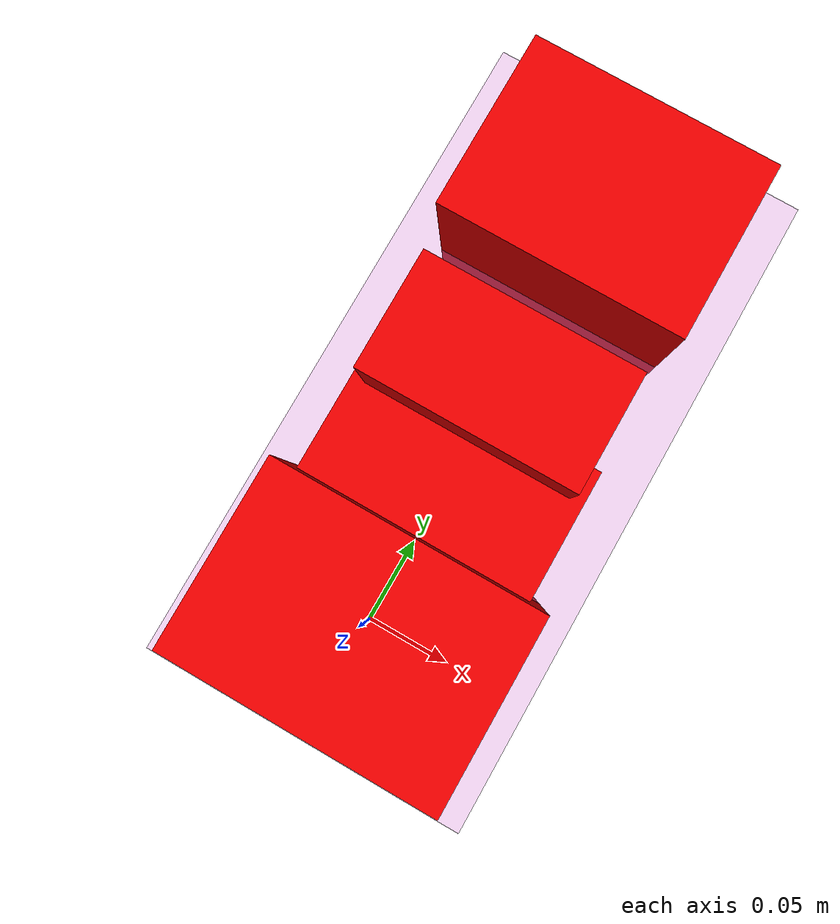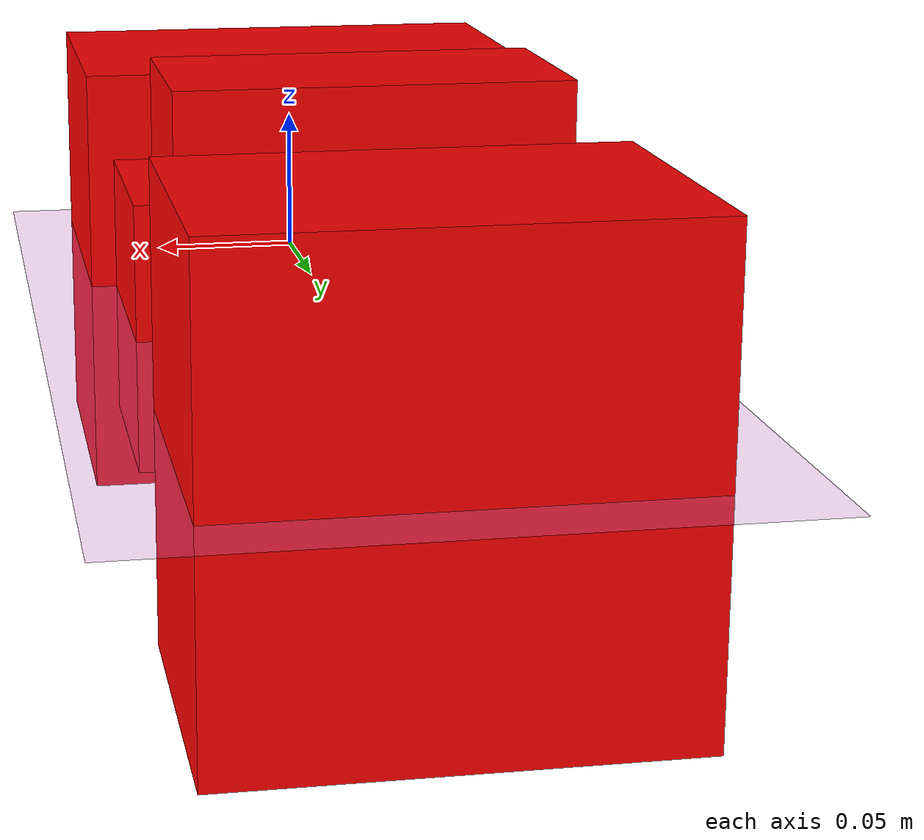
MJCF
<mujoco>
    <option gravity="0 0 -9.81"/>
    <worldbody>
        <light diffuse=".5 .5 .5" pos="0 0 3" dir="0 0 -1"/>
        <geom type="plane" size="5 5 0.1" rgba=".9 .5 .9 1"/>
        <body name="block0" pos="0 0 0">
            <joint type="free"/>
            <geom type="box" size="0.07528906749143635 0.05479215936285684 0.0798521647036522" rgba="1 0 0 1" euler="0 90 0"/>

            <body name="block1" pos="0 0.09368357249356182 0">
                <joint name="joint0" pos="0 -0.038891413130704974 0" type="hinge" axis="0 1 0" range="-15 0"/>
                <geom type="box" size="0.045323813014273094 0.038891413130704974 0.07099407188018585" rgba="1 0 0 1" euler="0 90 0"/>

                </body>

            <body name="block2" pos="0 0.14621832728977727 0">
                <joint name="joint1" pos="0 -0.03421775051418366 0" type="hinge" axis="0 1 0" range="-15 0"/>
                <geom type="box" size="0.0902197479771291 0.03421775051418366 0.06277217585596118" rgba="1 0 0 1" euler="0 90 0"/>

                </body>

            <body name="block3" pos="0 0.2610946632060267 0">
                <joint name="joint2" pos="0 -0.05281380388782524 0" type="hinge" axis="0 1 0" range="-15 0"/>
                <geom type="box" size="0.07598773552729471 0.05281380388782524 0.07266153785685003" rgba="1 0 0 1" euler="0 90 0"/>

            </body>
        </body>
    </worldbody>
</mujoco>
